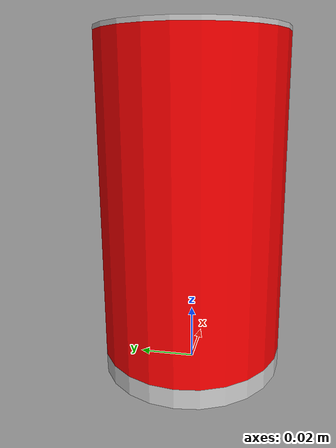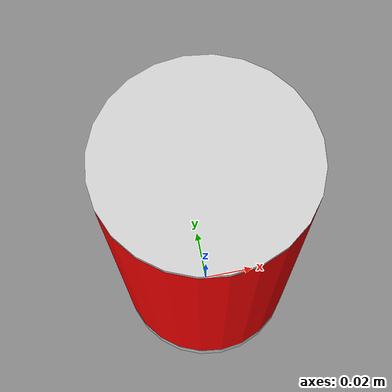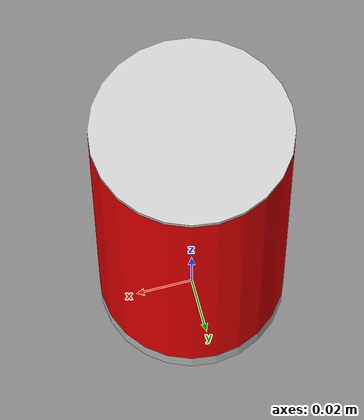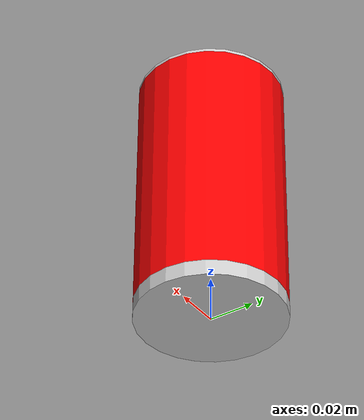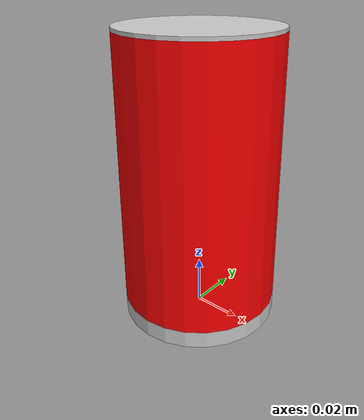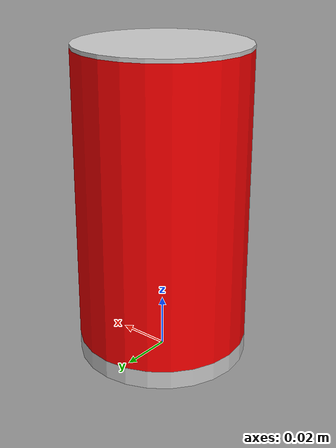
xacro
<?xml version="1.0"?>

<robot name="lata" xmlns:xacro="http://www.ros.org/wiki/xacro">

<link name="world" />

<joint name="lata" type="floating">
  <parent link="world"/>
  <child link="lata_link"/>
  <origin xyz="0 0 0" rpy="0 0 0" />
</joint>

<link name="lata_link">
  <visual>
    <geometry>

      <cylinder radius="0.0325" length="0.1115" />
    </geometry>
    <origin rpy="0 0 0" xyz="0 0 ${(0.1115/2)+0.007}" />
    <material name="red">
      <color rgba="1 0 0 1" />
    </material>
  </visual>
  <collision>
    <origin rpy="0 0 0" xyz="0 0 ${(0.1115/2)+0.007}" />
    <geometry>

      <cylinder radius="0.0325" length="0.1115" />
    </geometry>
  </collision>
  <inertial>
    <origin rpy="0 0 0" xyz="0 0 ${(0.1115/2)+0.007}" />
    <mass value="0.01" />
      <inertia ixx="0.001" ixy="0.0" ixz="0.0" iyy="0.001" iyz="0.0" izz="0.001"/>
  </inertial>
</link>

<joint name="lata_top" type="fixed">
  <parent link="lata_link"/>
  <child link="lata_top_link"/>
  <origin xyz="0 0 0.1185" rpy="0 0 0" />
</joint>

<link name="lata_top_link">
  <visual>
    <geometry>
      <cylinder radius="0.0325" length="0.0015" />
    </geometry>
    <origin rpy="0 0 0" xyz="0 0 ${0.0015/2}" />
    <material name="grey">
      <color rgba="0.8 0.8 0.8 1" />
    </material>
  </visual>
  <collision>
    <origin rpy="0 0 0" xyz="0 0 ${0.0015/2}" />
    <geometry>
      <cylinder radius="0.0325" length="0.0015" />
    </geometry>
  </collision>
  <inertial>
    <origin rpy="0 0 0" xyz="0 0 ${0.0015/2}" />
    <mass value="0.001" />
      <inertia ixx="0.0001" ixy="0.0" ixz="0.0" iyy="0.0001" iyz="0.0" izz="0.0001"/>
  </inertial>
</link>

<joint name="lata_bottom" type="fixed">
  <parent link="lata_link"/>
  <child link="lata_bottom_link"/>
  <origin xyz="0 0 0" rpy="0 0 0" />
</joint>

<link name="lata_bottom_link">
  <visual>
    <geometry>
      <cylinder radius="0.0325" length="0.007" />
    </geometry>
    <origin rpy="0 0 0" xyz="0 0 ${0.007/2}" />
    <material name="grey">
      <color rgba="0.8 0.8 0.8 1" />
    </material>
  </visual>
  <collision>
    <origin rpy="0 0 0" xyz="0 0 ${0.007/2}" />
    <geometry>
      <cylinder radius="0.0325" length="0.007" />
    </geometry>
  </collision>
  <inertial>
    <origin rpy="0 0 0" xyz="0 0 ${0.007/2}" />
    <mass value="0.001" />
      <inertia ixx="0.0001" ixy="0.0" ixz="0.0" iyy="0.0001" iyz="0.0" izz="0.0001"/>
  </inertial>
</link>

<gazebo reference="lata_link">
  <material>objetos_fer/Amstel</material>
  <mu1>1</mu1>
  <mu2>1</mu2>
  <selfCollide>true</selfCollide>
  <gravity>true</gravity>
</gazebo>

<gazebo reference="lata_top_link">
  <material>objetos_fer/Grey0</material>
  <mu1>1</mu1>
  <mu2>1</mu2>
  <selfCollide>true</selfCollide>
  <gravity>true</gravity>
</gazebo>

<gazebo reference="lata_bottom_link">
  <material>objetos_fer/Grey0</material>
  <mu1>1</mu1>
  <mu2>1</mu2>
  <selfCollide>true</selfCollide>
  <gravity>true</gravity>
</gazebo>

</robot>
